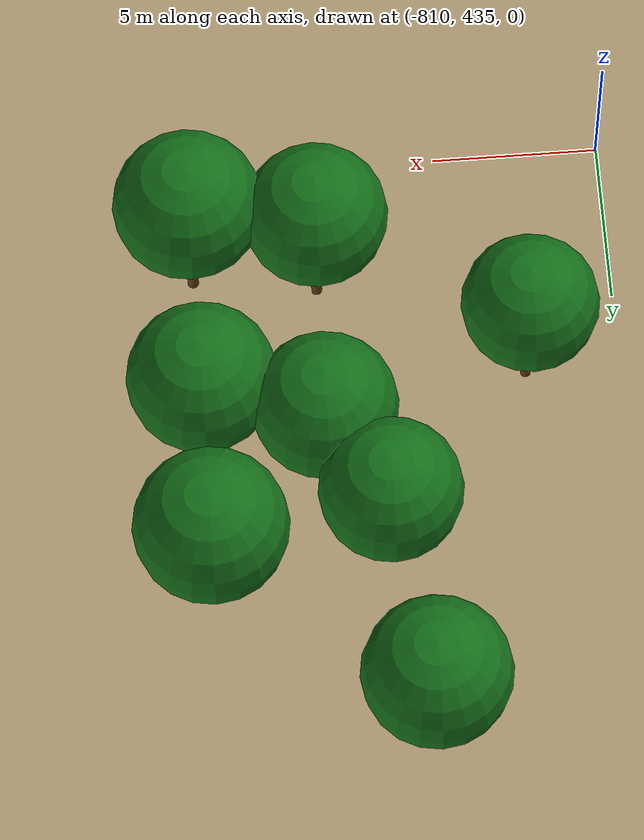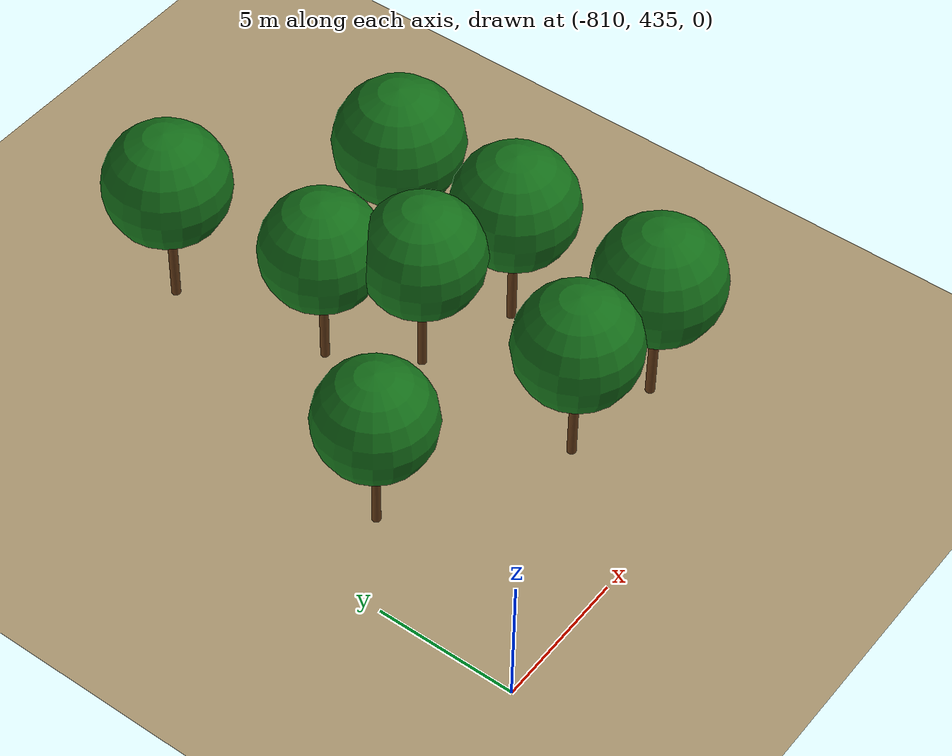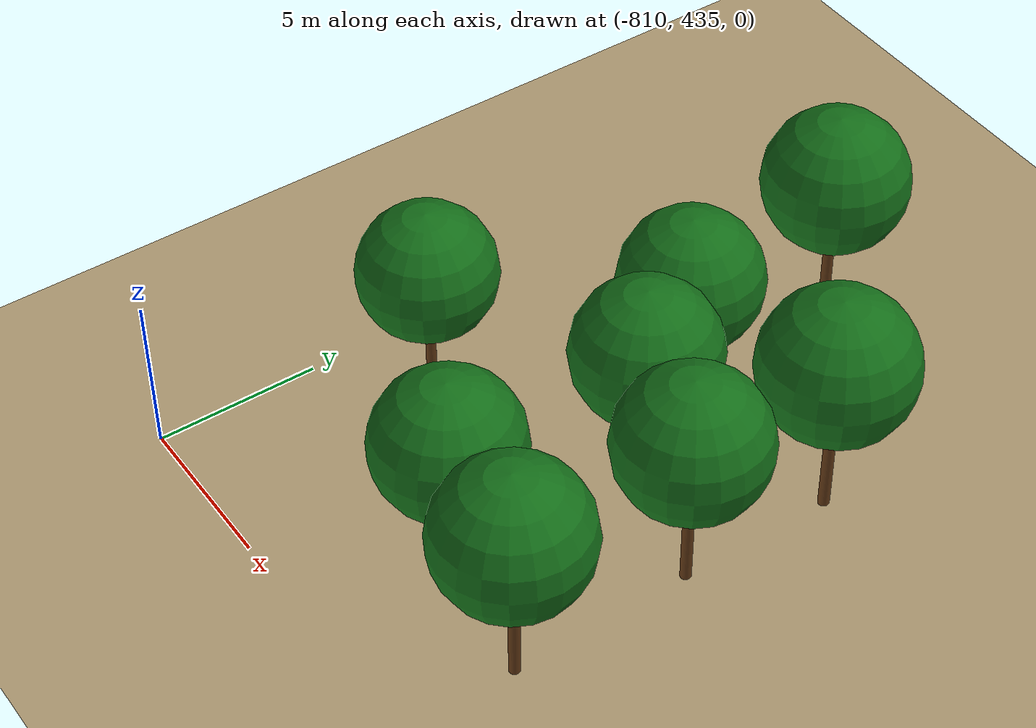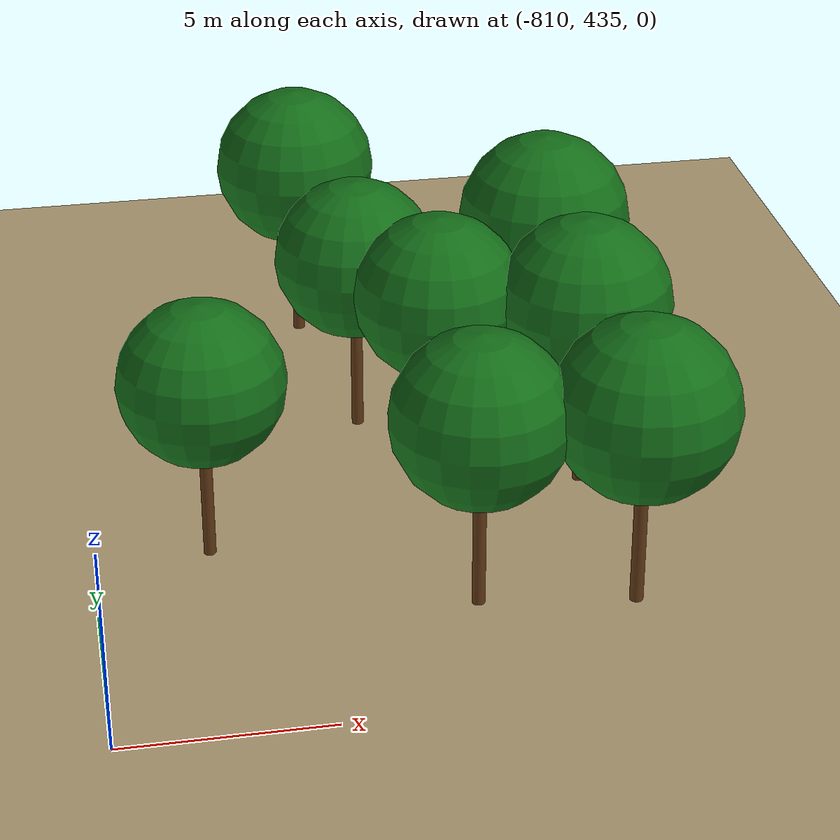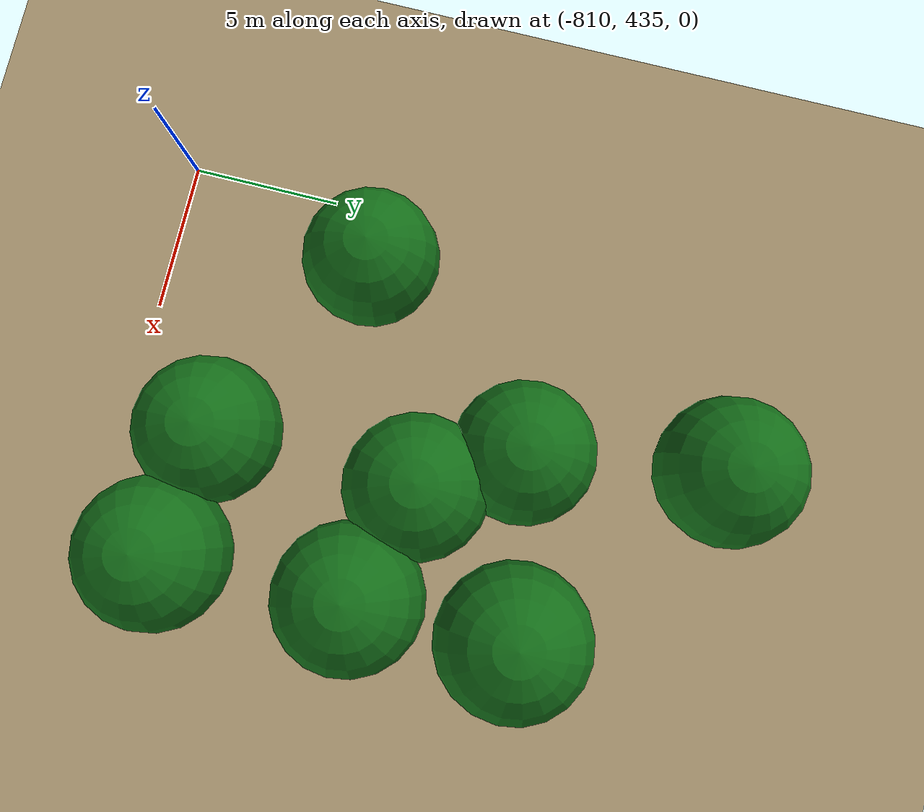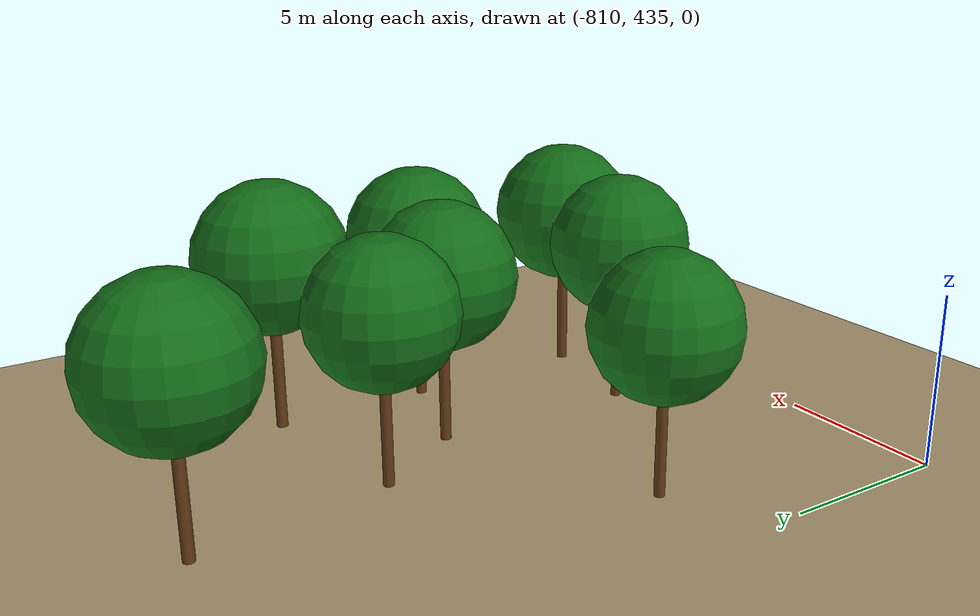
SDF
<sdf version="1.9">
 <world name="crossroad_world">
  <model name="ground_plane">
   <static>true</static>
   <pose>0 0 -0.05 0 0 0</pose>
   <link name="link">
    <collision name="collision">
     <geometry><plane><normal>0 0 1</normal><size>10000 10000</size></plane></geometry>
    </collision>
    <visual name="visual">
     <geometry><plane><normal>0 0 1</normal><size>15000 15000</size></plane></geometry>
     <material><ambient>0.68 0.60 0.45 1</ambient><diffuse>0.68 0.60 0.45 1</diffuse></material>
    </visual>
   </link>
  </model>
  <model name="tree_259">
   <static>true</static>
   <pose>-807.171 442.348 0 0 0 0</pose>
   <link name="link">
    <visual name="trunk">
     <pose>0 0 1.717 0 0 0</pose>
     <geometry><cylinder><radius>0.150</radius><length>3.433</length></cylinder></geometry>
     <material><ambient>0.38 0.22 0.08 1</ambient><diffuse>0.38 0.22 0.08 1</diffuse></material>
    </visual>
    <visual name="canopy">
     <pose>0 0 4.758 0 0 0</pose>
     <geometry><sphere><radius>2.038</radius></sphere></geometry>
     <material><ambient>0.08 0.44 0.10 1</ambient><diffuse>0.08 0.44 0.10 1</diffuse></material>
    </visual>
    <collision name="col">
     <pose>0 0 1.717 0 0 0</pose>
     <geometry><cylinder><radius>0.150</radius><length>3.433</length></cylinder></geometry>
    </collision>
   </link>
  </model>
  <model name="tree_261">
   <static>true</static>
   <pose>-801.116 439.111 0 0 0 0</pose>
   <link name="link">
    <visual name="trunk">
     <pose>0 0 1.805 0 0 0</pose>
     <geometry><cylinder><radius>0.158</radius><length>3.609</length></cylinder></geometry>
     <material><ambient>0.38 0.22 0.08 1</ambient><diffuse>0.38 0.22 0.08 1</diffuse></material>
    </visual>
    <visual name="canopy">
     <pose>0 0 5.002 0 0 0</pose>
     <geometry><sphere><radius>2.143</radius></sphere></geometry>
     <material><ambient>0.08 0.44 0.10 1</ambient><diffuse>0.08 0.44 0.10 1</diffuse></material>
    </visual>
    <collision name="col">
     <pose>0 0 1.805 0 0 0</pose>
     <geometry><cylinder><radius>0.158</radius><length>3.609</length></cylinder></geometry>
    </collision>
   </link>
  </model>
  <model name="tree_262">
   <static>true</static>
   <pose>-800.951 445.286 0 0 0 0</pose>
   <link name="link">
    <visual name="trunk">
     <pose>0 0 1.808 0 0 0</pose>
     <geometry><cylinder><radius>0.158</radius><length>3.615</length></cylinder></geometry>
     <material><ambient>0.38 0.22 0.08 1</ambient><diffuse>0.38 0.22 0.08 1</diffuse></material>
    </visual>
    <visual name="canopy">
     <pose>0 0 5.010 0 0 0</pose>
     <geometry><sphere><radius>2.147</radius></sphere></geometry>
     <material><ambient>0.08 0.44 0.10 1</ambient><diffuse>0.08 0.44 0.10 1</diffuse></material>
    </visual>
    <collision name="col">
     <pose>0 0 1.808 0 0 0</pose>
     <geometry><cylinder><radius>0.158</radius><length>3.615</length></cylinder></geometry>
    </collision>
   </link>
  </model>
  <model name="tree_263">
   <static>true</static>
   <pose>-802.647 448.038 0 0 0 0</pose>
   <link name="link">
    <visual name="trunk">
     <pose>0 0 1.773 0 0 0</pose>
     <geometry><cylinder><radius>0.155</radius><length>3.547</length></cylinder></geometry>
     <material><ambient>0.38 0.22 0.08 1</ambient><diffuse>0.38 0.22 0.08 1</diffuse></material>
    </visual>
    <visual name="canopy">
     <pose>0 0 4.916 0 0 0</pose>
     <geometry><sphere><radius>2.106</radius></sphere></geometry>
     <material><ambient>0.08 0.44 0.10 1</ambient><diffuse>0.08 0.44 0.10 1</diffuse></material>
    </visual>
    <collision name="col">
     <pose>0 0 1.773 0 0 0</pose>
     <geometry><cylinder><radius>0.155</radius><length>3.547</length></cylinder></geometry>
    </collision>
   </link>
  </model>
  <model name="tree_264">
   <static>true</static>
   <pose>-803.485 453.815 0 0 0 0</pose>
   <link name="link">
    <visual name="trunk">
     <pose>0 0 1.840 0 0 0</pose>
     <geometry><cylinder><radius>0.161</radius><length>3.679</length></cylinder></geometry>
     <material><ambient>0.38 0.22 0.08 1</ambient><diffuse>0.38 0.22 0.08 1</diffuse></material>
    </visual>
    <visual name="canopy">
     <pose>0 0 5.099 0 0 0</pose>
     <geometry><sphere><radius>2.184</radius></sphere></geometry>
     <material><ambient>0.08 0.44 0.10 1</ambient><diffuse>0.08 0.44 0.10 1</diffuse></material>
    </visual>
    <collision name="col">
     <pose>0 0 1.840 0 0 0</pose>
     <geometry><cylinder><radius>0.161</radius><length>3.679</length></cylinder></geometry>
    </collision>
   </link>
  </model>
  <model name="tree_265">
   <static>true</static>
   <pose>-797.402 438.594 0 0 0 0</pose>
   <link name="link">
    <visual name="trunk">
     <pose>0 0 1.874 0 0 0</pose>
     <geometry><cylinder><radius>0.164</radius><length>3.748</length></cylinder></geometry>
     <material><ambient>0.38 0.22 0.08 1</ambient><diffuse>0.38 0.22 0.08 1</diffuse></material>
    </visual>
    <visual name="canopy">
     <pose>0 0 5.195 0 0 0</pose>
     <geometry><sphere><radius>2.225</radius></sphere></geometry>
     <material><ambient>0.08 0.44 0.10 1</ambient><diffuse>0.08 0.44 0.10 1</diffuse></material>
    </visual>
    <collision name="col">
     <pose>0 0 1.874 0 0 0</pose>
     <geometry><cylinder><radius>0.164</radius><length>3.748</length></cylinder></geometry>
    </collision>
   </link>
  </model>
  <model name="tree_266">
   <static>true</static>
   <pose>-797.464 444.186 0 0 0 0</pose>
   <link name="link">
    <visual name="trunk">
     <pose>0 0 1.854 0 0 0</pose>
     <geometry><cylinder><radius>0.162</radius><length>3.709</length></cylinder></geometry>
     <material><ambient>0.38 0.22 0.08 1</ambient><diffuse>0.38 0.22 0.08 1</diffuse></material>
    </visual>
    <visual name="canopy">
     <pose>0 0 5.140 0 0 0</pose>
     <geometry><sphere><radius>2.202</radius></sphere></geometry>
     <material><ambient>0.08 0.44 0.10 1</ambient><diffuse>0.08 0.44 0.10 1</diffuse></material>
    </visual>
    <collision name="col">
     <pose>0 0 1.854 0 0 0</pose>
     <geometry><cylinder><radius>0.162</radius><length>3.709</length></cylinder></geometry>
    </collision>
   </link>
  </model>
  <model name="tree_267">
   <static>true</static>
   <pose>-797.435 448.933 0 0 0 0</pose>
   <link name="link">
    <visual name="trunk">
     <pose>0 0 1.907 0 0 0</pose>
     <geometry><cylinder><radius>0.167</radius><length>3.813</length></cylinder></geometry>
     <material><ambient>0.38 0.22 0.08 1</ambient><diffuse>0.38 0.22 0.08 1</diffuse></material>
    </visual>
    <visual name="canopy">
     <pose>0 0 5.285 0 0 0</pose>
     <geometry><sphere><radius>2.264</radius></sphere></geometry>
     <material><ambient>0.08 0.44 0.10 1</ambient><diffuse>0.08 0.44 0.10 1</diffuse></material>
    </visual>
    <collision name="col">
     <pose>0 0 1.907 0 0 0</pose>
     <geometry><cylinder><radius>0.167</radius><length>3.813</length></cylinder></geometry>
    </collision>
   </link>
  </model>
 </world>
</sdf>
